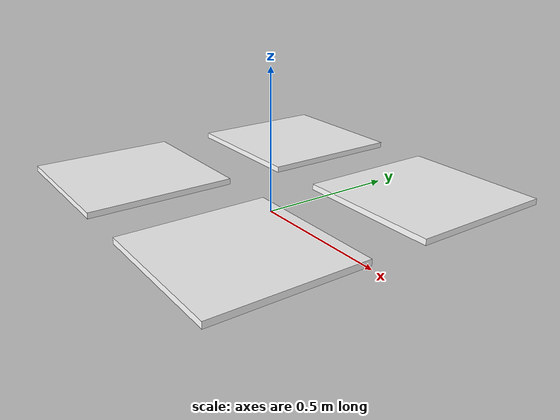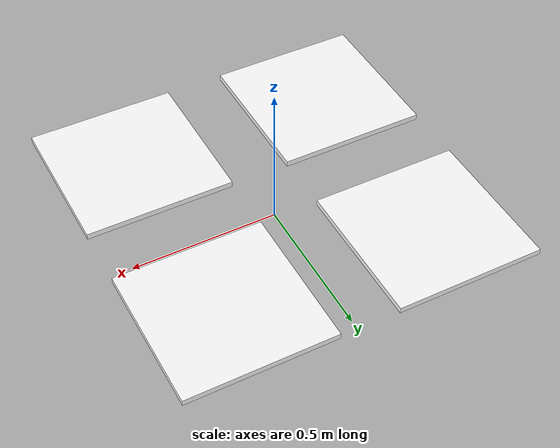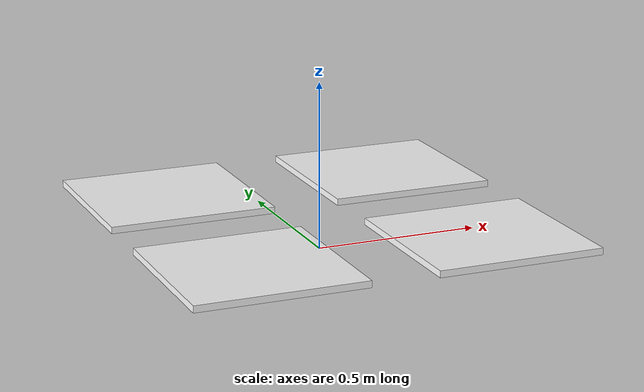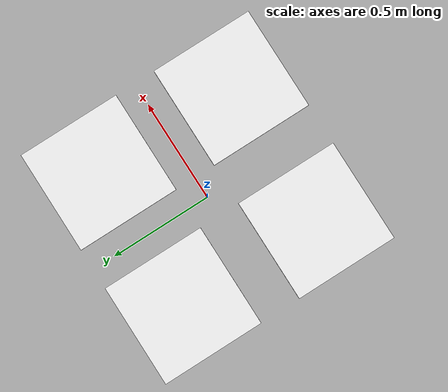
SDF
<?xml version="1.0" ?>
<sdf version="1.5">
  <model name='charging_station'>
    <include>
      <name>charging_spot_1</name>
      <uri>model://charging_spot</uri>
      <pose>0.35 -0.35 0.1 0 0 0</pose>
    </include>
    <include>
      <name>charging_spot_2</name>
      <uri>model://charging_spot</uri>
      <pose>-0.35 0.35 0.1 0 0 0</pose>
    </include>
    <include>
      <name>charging_spot_3</name>
      <uri>model://charging_spot</uri>
      <pose>0.35 0.35 0.1 0 0 0</pose>
    </include>
    <include>
      <name>charging_spot_4</name>
      <uri>model://charging_spot</uri>
      <pose>-0.35 -0.35 0.1 0 0 0</pose>
    </include>
  </model>
</sdf>

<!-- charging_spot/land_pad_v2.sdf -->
<sdf version="1.5">
  <model name="charging_station">
      <link name="link">
        <collision name="box_collision">
          <geometry>
            <box>
              <size>0.5 0.5 0.01</size>
            </box>
          </geometry>
        </collision>

        <visual name="visual">
          <geometry>
            <box>
              <size>0.5 0.5 0.02</size>
            </box>
          </geometry>
          <material>
            <script>
              <uri>model://land_pad_v2/materials/scripts</uri>
              <uri>model://land_pad_v2/materials/textures</uri>
              <name>VascoReid/Maker</name>
            </script>
            <ambient>1 1 1 1</ambient>
            <diffuse>1 1 1 1</diffuse>
            <specular>0 0 0 1</specular>
            <emissive>1 1 1 0</emissive>
            <shader type='vertex'>
              <normal_map>__default__</normal_map>
            </shader>
        </material>
        </visual>

        <sensor name='my_contact' type='contact'>
          <contact>
            <collision>box_collision</collision>
          </contact>
        </sensor>
      </link>
  </model>
</sdf>
